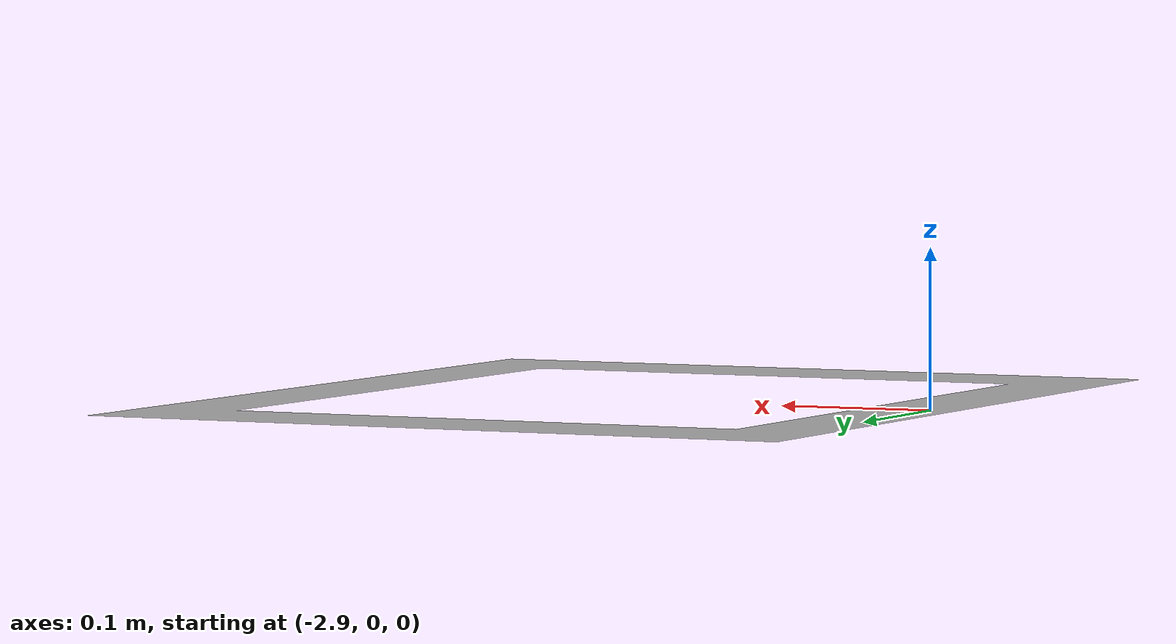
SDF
<?xml version="1.0" ?>
<sdf version="1.6">
  <model name="parking_plane">
    <static>true</static>
    <link name="link_plane">
      <visual name="visual_plane">
        <geometry>
          <mesh>
            <uri>model://parking_plane/meshes/parking_model.dae</uri>
          </mesh>
        </geometry>
      </visual>

      <collision name="collision">
        <geometry>
          <mesh>
            <uri>model://parking_plane/meshes/parking_model.dae</uri>
          </mesh>
        </geometry>
      </collision>
    </link>
  </model>
</sdf>
